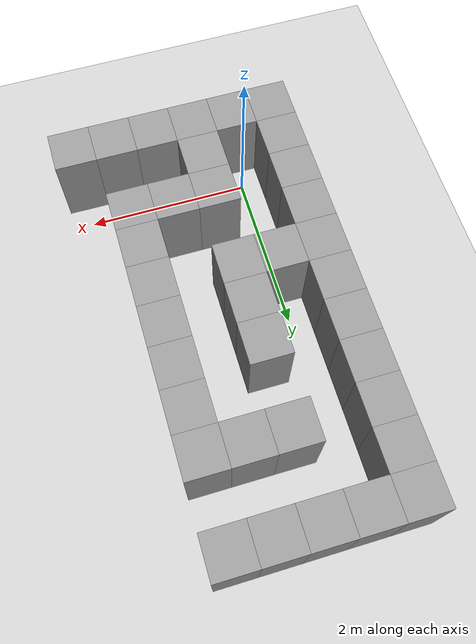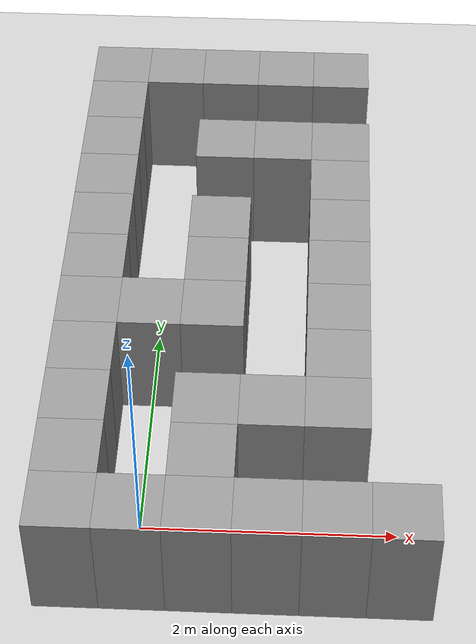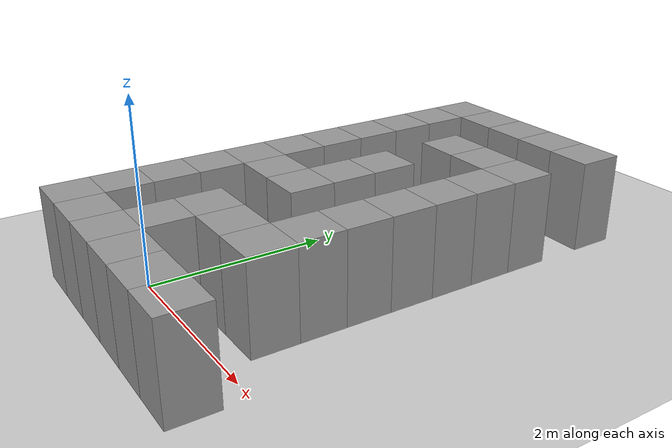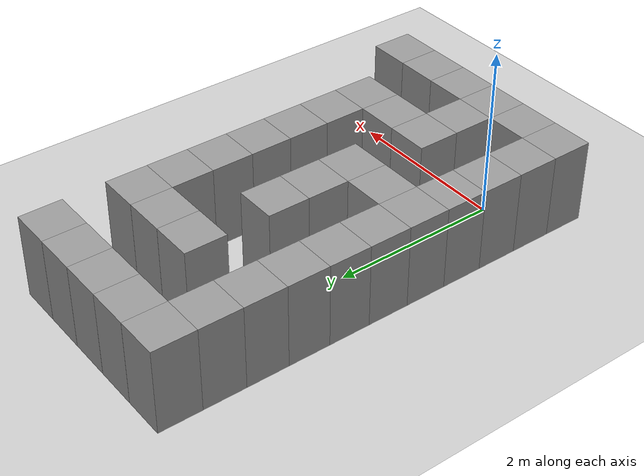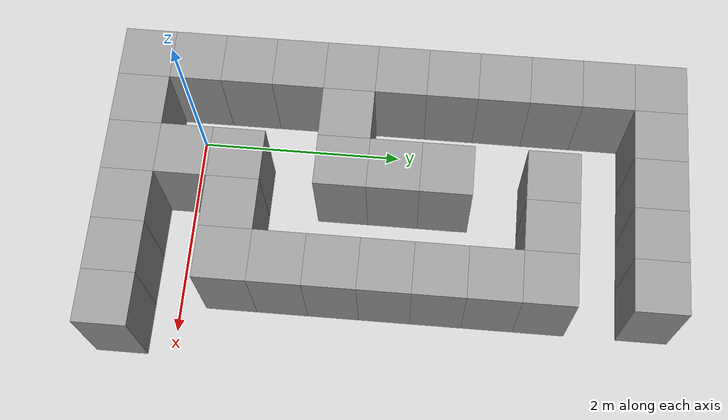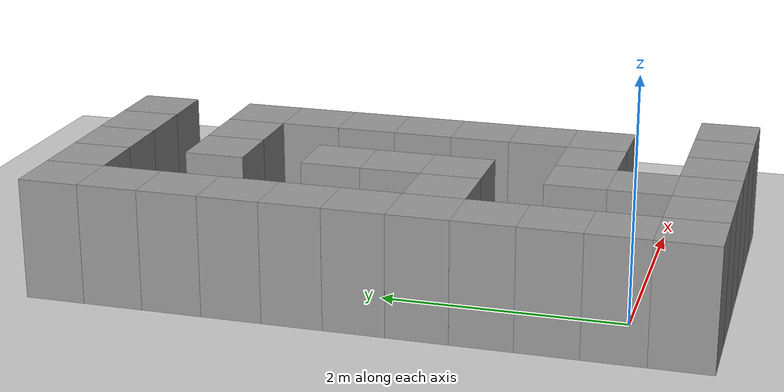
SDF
<sdf version="1.7">
 <world name="default">
  <model name="ground_plane">
   <static>1</static>
   <link name="link">
    <collision name="collision">
     <geometry><plane><normal>0 0 1</normal><size>100 100</size></plane></geometry>
     <surface>
      <contact><collide_bitmask>65535</collide_bitmask></contact>
      <friction><ode><mu>100</mu><mu2>50</mu2></ode></friction>
     </surface>
    </collision>
    <visual name="visual">
     <cast_shadows>0</cast_shadows>
     <geometry><plane><normal>0 0 1</normal><size>100 100</size></plane></geometry>
     <material>
      <script><uri>file://media/materials/scripts/gazebo.material</uri><name>Gazebo/Grey</name></script>
     </material>
    </visual>
   </link>
  </model>
  <model name="unit_box_0">
   <pose>-0.5 -0.5 0.5 0 -1e-05 -0.000818</pose>
   <link name="link">
    <inertial>
     <mass>1</mass>
     <inertia>
      <ixx>0.166667</ixx>
      <ixy>0</ixy>
      <ixz>0</ixz>
      <iyy>0.166667</iyy>
      <iyz>0</iyz>
      <izz>0.166667</izz>
     </inertia>
    </inertial>
    <collision name="collision"><geometry><box><size>0.5 0.5 1</size></box></geometry></collision>
    <visual name="visual">
     <geometry><box><size>0.5 0.5 1</size></box></geometry>
     <material>
      <script><name>Gazebo/Grey</name><uri>file://media/materials/scripts/gazebo.material</uri></script>
     </material>
    </visual>
   </link>
  </model>
  <model name="unit_box_1">
   <pose>0.0 -0.5 0.5 0 -1e-05 -0.000818</pose>
   <link name="link">
    <inertial>
     <mass>1</mass>
     <inertia>
      <ixx>0.166667</ixx>
      <ixy>0</ixy>
      <ixz>0</ixz>
      <iyy>0.166667</iyy>
      <iyz>0</iyz>
      <izz>0.166667</izz>
     </inertia>
    </inertial>
    <collision name="collision"><geometry><box><size>0.5 0.5 1</size></box></geometry></collision>
    <visual name="visual">
     <geometry><box><size>0.5 0.5 1</size></box></geometry>
     <material>
      <script><name>Gazebo/Grey</name><uri>file://media/materials/scripts/gazebo.material</uri></script>
     </material>
    </visual>
   </link>
  </model>
  <model name="unit_box_2">
   <pose>0.5 -0.5 0.5 0 -1e-05 -0.000818</pose>
   <link name="link">
    <inertial>
     <mass>1</mass>
     <inertia>
      <ixx>0.166667</ixx>
      <ixy>0</ixy>
      <ixz>0</ixz>
      <iyy>0.166667</iyy>
      <iyz>0</iyz>
      <izz>0.166667</izz>
     </inertia>
    </inertial>
    <collision name="collision"><geometry><box><size>0.5 0.5 1</size></box></geometry></collision>
    <visual name="visual">
     <geometry><box><size>0.5 0.5 1</size></box></geometry>
     <material>
      <script><name>Gazebo/Grey</name><uri>file://media/materials/scripts/gazebo.material</uri></script>
     </material>
    </visual>
   </link>
  </model>
  <model name="unit_box_3">
   <pose>1.0 -0.5 0.5 0 -1e-05 -0.000818</pose>
   <link name="link">
    <inertial>
     <mass>1</mass>
     <inertia>
      <ixx>0.166667</ixx>
      <ixy>0</ixy>
      <ixz>0</ixz>
      <iyy>0.166667</iyy>
      <iyz>0</iyz>
      <izz>0.166667</izz>
     </inertia>
    </inertial>
    <collision name="collision"><geometry><box><size>0.5 0.5 1</size></box></geometry></collision>
    <visual name="visual">
     <geometry><box><size>0.5 0.5 1</size></box></geometry>
     <material>
      <script><name>Gazebo/Grey</name><uri>file://media/materials/scripts/gazebo.material</uri></script>
     </material>
    </visual>
   </link>
  </model>
  <model name="unit_box_4">
   <pose>1.5 -0.5 0.5 0 -1e-05 -0.000818</pose>
   <link name="link">
    <inertial>
     <mass>1</mass>
     <inertia>
      <ixx>0.166667</ixx>
      <ixy>0</ixy>
      <ixz>0</ixz>
      <iyy>0.166667</iyy>
      <iyz>0</iyz>
      <izz>0.166667</izz>
     </inertia>
    </inertial>
    <collision name="collision"><geometry><box><size>0.5 0.5 1</size></box></geometry></collision>
    <visual name="visual">
     <geometry><box><size>0.5 0.5 1</size></box></geometry>
     <material>
      <script><name>Gazebo/Grey</name><uri>file://media/materials/scripts/gazebo.material</uri></script>
     </material>
    </visual>
   </link>
  </model>
  <model name="unit_box_5">
   <pose>2.0 -0.5 0.5 0 -1e-05 -0.000818</pose>
   <link name="link">
    <inertial>
     <mass>1</mass>
     <inertia>
      <ixx>0.166667</ixx>
      <ixy>0</ixy>
      <ixz>0</ixz>
      <iyy>0.166667</iyy>
      <iyz>0</iyz>
      <izz>0.166667</izz>
     </inertia>
    </inertial>
    <collision name="collision"><geometry><box><size>0.5 0.5 1</size></box></geometry></collision>
    <visual name="visual">
     <geometry><box><size>0.5 0.5 1</size></box></geometry>
     <material>
      <script><name>Gazebo/Grey</name><uri>file://media/materials/scripts/gazebo.material</uri></script>
     </material>
    </visual>
   </link>
  </model>
  <model name="unit_box_11">
   <pose>-0.5 0.0 0.5 0 -1e-05 -0.000818</pose>
   <link name="link">
    <inertial>
     <mass>1</mass>
     <inertia>
      <ixx>0.166667</ixx>
      <ixy>0</ixy>
      <ixz>0</ixz>
      <iyy>0.166667</iyy>
      <iyz>0</iyz>
      <izz>0.166667</izz>
     </inertia>
    </inertial>
    <collision name="collision"><geometry><box><size>0.5 0.5 1</size></box></geometry></collision>
    <visual name="visual">
     <geometry><box><size>0.5 0.5 1</size></box></geometry>
     <material>
      <script><name>Gazebo/Grey</name><uri>file://media/materials/scripts/gazebo.material</uri></script>
     </material>
    </visual>
   </link>
  </model>
  <model name="unit_box_12">
   <pose>0.5 0.0 0.5 0 -1e-05 -0.000818</pose>
   <link name="link">
    <inertial>
     <mass>1</mass>
     <inertia>
      <ixx>0.166667</ixx>
      <ixy>0</ixy>
      <ixz>0</ixz>
      <iyy>0.166667</iyy>
      <iyz>0</iyz>
      <izz>0.166667</izz>
     </inertia>
    </inertial>
    <collision name="collision"><geometry><box><size>0.5 0.5 1</size></box></geometry></collision>
    <visual name="visual">
     <geometry><box><size>0.5 0.5 1</size></box></geometry>
     <material>
      <script><name>Gazebo/Grey</name><uri>file://media/materials/scripts/gazebo.material</uri></script>
     </material>
    </visual>
   </link>
  </model>
  <model name="unit_box_14">
   <pose>-0.5 0.5 0.5 0 -1e-05 -0.000818</pose>
   <link name="link">
    <inertial>
     <mass>1</mass>
     <inertia>
      <ixx>0.166667</ixx>
      <ixy>0</ixy>
      <ixz>0</ixz>
      <iyy>0.166667</iyy>
      <iyz>0</iyz>
      <izz>0.166667</izz>
     </inertia>
    </inertial>
    <collision name="collision"><geometry><box><size>0.5 0.5 1</size></box></geometry></collision>
    <visual name="visual">
     <geometry><box><size>0.5 0.5 1</size></box></geometry>
     <material>
      <script><name>Gazebo/Grey</name><uri>file://media/materials/scripts/gazebo.material</uri></script>
     </material>
    </visual>
   </link>
  </model>
  <model name="unit_box_15">
   <pose>0.5 0.5 0.5 0 -1e-05 -0.000818</pose>
   <link name="link">
    <inertial>
     <mass>1</mass>
     <inertia>
      <ixx>0.166667</ixx>
      <ixy>0</ixy>
      <ixz>0</ixz>
      <iyy>0.166667</iyy>
      <iyz>0</iyz>
      <izz>0.166667</izz>
     </inertia>
    </inertial>
    <collision name="collision"><geometry><box><size>0.5 0.5 1</size></box></geometry></collision>
    <visual name="visual">
     <geometry><box><size>0.5 0.5 1</size></box></geometry>
     <material>
      <script><name>Gazebo/Grey</name><uri>file://media/materials/scripts/gazebo.material</uri></script>
     </material>
    </visual>
   </link>
  </model>
  <model name="unit_box_16">
   <pose>1.0 0.5 0.5 0 -1e-05 -0.000818</pose>
   <link name="link">
    <inertial>
     <mass>1</mass>
     <inertia>
      <ixx>0.166667</ixx>
      <ixy>0</ixy>
      <ixz>0</ixz>
      <iyy>0.166667</iyy>
      <iyz>0</iyz>
      <izz>0.166667</izz>
     </inertia>
    </inertial>
    <collision name="collision"><geometry><box><size>0.5 0.5 1</size></box></geometry></collision>
    <visual name="visual">
     <geometry><box><size>0.5 0.5 1</size></box></geometry>
     <material>
      <script><name>Gazebo/Grey</name><uri>file://media/materials/scripts/gazebo.material</uri></script>
     </material>
    </visual>
   </link>
  </model>
  <model name="unit_box_17">
   <pose>1.5 0.5 0.5 0 -1e-05 -0.000818</pose>
   <link name="link">
    <inertial>
     <mass>1</mass>
     <inertia>
      <ixx>0.166667</ixx>
      <ixy>0</ixy>
      <ixz>0</ixz>
      <iyy>0.166667</iyy>
      <iyz>0</iyz>
      <izz>0.166667</izz>
     </inertia>
    </inertial>
    <collision name="collision"><geometry><box><size>0.5 0.5 1</size></box></geometry></collision>
    <visual name="visual">
     <geometry><box><size>0.5 0.5 1</size></box></geometry>
     <material>
      <script><name>Gazebo/Grey</name><uri>file://media/materials/scripts/gazebo.material</uri></script>
     </material>
    </visual>
   </link>
  </model>
  <model name="unit_box_22">
   <pose>-0.5 1.0 0.5 0 -1e-05 -0.000818</pose>
   <link name="link">
    <inertial>
     <mass>1</mass>
     <inertia>
      <ixx>0.166667</ixx>
      <ixy>0</ixy>
      <ixz>0</ixz>
      <iyy>0.166667</iyy>
      <iyz>0</iyz>
      <izz>0.166667</izz>
     </inertia>
    </inertial>
    <collision name="collision"><geometry><box><size>0.5 0.5 1</size></box></geometry></collision>
    <visual name="visual">
     <geometry><box><size>0.5 0.5 1</size></box></geometry>
     <material>
      <script><name>Gazebo/Grey</name><uri>file://media/materials/scripts/gazebo.material</uri></script>
     </material>
    </visual>
   </link>
  </model>
  <model name="unit_box_23">
   <pose>1.5 1.0 0.5 0 -1e-05 -0.000818</pose>
   <link name="link">
    <inertial>
     <mass>1</mass>
     <inertia>
      <ixx>0.166667</ixx>
      <ixy>0</ixy>
      <ixz>0</ixz>
      <iyy>0.166667</iyy>
      <iyz>0</iyz>
      <izz>0.166667</izz>
     </inertia>
    </inertial>
    <collision name="collision"><geometry><box><size>0.5 0.5 1</size></box></geometry></collision>
    <visual name="visual">
     <geometry><box><size>0.5 0.5 1</size></box></geometry>
     <material>
      <script><name>Gazebo/Grey</name><uri>file://media/materials/scripts/gazebo.material</uri></script>
     </material>
    </visual>
   </link>
  </model>
  <model name="unit_box_27">
   <pose>-0.5 1.5 0.5 0 -1e-05 -0.000818</pose>
   <link name="link">
    <inertial>
     <mass>1</mass>
     <inertia>
      <ixx>0.166667</ixx>
      <ixy>0</ixy>
      <ixz>0</ixz>
      <iyy>0.166667</iyy>
      <iyz>0</iyz>
      <izz>0.166667</izz>
     </inertia>
    </inertial>
    <collision name="collision"><geometry><box><size>0.5 0.5 1</size></box></geometry></collision>
    <visual name="visual">
     <geometry><box><size>0.5 0.5 1</size></box></geometry>
     <material>
      <script><name>Gazebo/Grey</name><uri>file://media/materials/scripts/gazebo.material</uri></script>
     </material>
    </visual>
   </link>
  </model>
  <model name="unit_box_28">
   <pose>0.0 1.5 0.5 0 -1e-05 -0.000818</pose>
   <link name="link">
    <inertial>
     <mass>1</mass>
     <inertia>
      <ixx>0.166667</ixx>
      <ixy>0</ixy>
      <ixz>0</ixz>
      <iyy>0.166667</iyy>
      <iyz>0</iyz>
      <izz>0.166667</izz>
     </inertia>
    </inertial>
    <collision name="collision"><geometry><box><size>0.5 0.5 1</size></box></geometry></collision>
    <visual name="visual">
     <geometry><box><size>0.5 0.5 1</size></box></geometry>
     <material>
      <script><name>Gazebo/Grey</name><uri>file://media/materials/scripts/gazebo.material</uri></script>
     </material>
    </visual>
   </link>
  </model>
  <model name="unit_box_29">
   <pose>0.5 1.5 0.5 0 -1e-05 -0.000818</pose>
   <link name="link">
    <inertial>
     <mass>1</mass>
     <inertia>
      <ixx>0.166667</ixx>
      <ixy>0</ixy>
      <ixz>0</ixz>
      <iyy>0.166667</iyy>
      <iyz>0</iyz>
      <izz>0.166667</izz>
     </inertia>
    </inertial>
    <collision name="collision"><geometry><box><size>0.5 0.5 1</size></box></geometry></collision>
    <visual name="visual">
     <geometry><box><size>0.5 0.5 1</size></box></geometry>
     <material>
      <script><name>Gazebo/Grey</name><uri>file://media/materials/scripts/gazebo.material</uri></script>
     </material>
    </visual>
   </link>
  </model>
  <model name="unit_box_30">
   <pose>1.5 1.5 0.5 0 -1e-05 -0.000818</pose>
   <link name="link">
    <inertial>
     <mass>1</mass>
     <inertia>
      <ixx>0.166667</ixx>
      <ixy>0</ixy>
      <ixz>0</ixz>
      <iyy>0.166667</iyy>
      <iyz>0</iyz>
      <izz>0.166667</izz>
     </inertia>
    </inertial>
    <collision name="collision"><geometry><box><size>0.5 0.5 1</size></box></geometry></collision>
    <visual name="visual">
     <geometry><box><size>0.5 0.5 1</size></box></geometry>
     <material>
      <script><name>Gazebo/Grey</name><uri>file://media/materials/scripts/gazebo.material</uri></script>
     </material>
    </visual>
   </link>
  </model>
  <model name="unit_box_34">
   <pose>-0.5 2.0 0.5 0 -1e-05 -0.000818</pose>
   <link name="link">
    <inertial>
     <mass>1</mass>
     <inertia>
      <ixx>0.166667</ixx>
      <ixy>0</ixy>
      <ixz>0</ixz>
      <iyy>0.166667</iyy>
      <iyz>0</iyz>
      <izz>0.166667</izz>
     </inertia>
    </inertial>
    <collision name="collision"><geometry><box><size>0.5 0.5 1</size></box></geometry></collision>
    <visual name="visual">
     <geometry><box><size>0.5 0.5 1</size></box></geometry>
     <material>
      <script><name>Gazebo/Grey</name><uri>file://media/materials/scripts/gazebo.material</uri></script>
     </material>
    </visual>
   </link>
  </model>
  <model name="unit_box_35">
   <pose>0.5 2.0 0.5 0 -1e-05 -0.000818</pose>
   <link name="link">
    <inertial>
     <mass>1</mass>
     <inertia>
      <ixx>0.166667</ixx>
      <ixy>0</ixy>
      <ixz>0</ixz>
      <iyy>0.166667</iyy>
      <iyz>0</iyz>
      <izz>0.166667</izz>
     </inertia>
    </inertial>
    <collision name="collision"><geometry><box><size>0.5 0.5 1</size></box></geometry></collision>
    <visual name="visual">
     <geometry><box><size>0.5 0.5 1</size></box></geometry>
     <material>
      <script><name>Gazebo/Grey</name><uri>file://media/materials/scripts/gazebo.material</uri></script>
     </material>
    </visual>
   </link>
  </model>
  <model name="unit_box_36">
   <pose>1.5 2.0 0.5 0 -1e-05 -0.000818</pose>
   <link name="link">
    <inertial>
     <mass>1</mass>
     <inertia>
      <ixx>0.166667</ixx>
      <ixy>0</ixy>
      <ixz>0</ixz>
      <iyy>0.166667</iyy>
      <iyz>0</iyz>
      <izz>0.166667</izz>
     </inertia>
    </inertial>
    <collision name="collision"><geometry><box><size>0.5 0.5 1</size></box></geometry></collision>
    <visual name="visual">
     <geometry><box><size>0.5 0.5 1</size></box></geometry>
     <material>
      <script><name>Gazebo/Grey</name><uri>file://media/materials/scripts/gazebo.material</uri></script>
     </material>
    </visual>
   </link>
  </model>
  <model name="unit_box_39">
   <pose>-0.5 2.5 0.5 0 -1e-05 -0.000818</pose>
   <link name="link">
    <inertial>
     <mass>1</mass>
     <inertia>
      <ixx>0.166667</ixx>
      <ixy>0</ixy>
      <ixz>0</ixz>
      <iyy>0.166667</iyy>
      <iyz>0</iyz>
      <izz>0.166667</izz>
     </inertia>
    </inertial>
    <collision name="collision"><geometry><box><size>0.5 0.5 1</size></box></geometry></collision>
    <visual name="visual">
     <geometry><box><size>0.5 0.5 1</size></box></geometry>
     <material>
      <script><name>Gazebo/Grey</name><uri>file://media/materials/scripts/gazebo.material</uri></script>
     </material>
    </visual>
   </link>
  </model>
  <model name="unit_box_40">
   <pose>0.5 2.5 0.5 0 -1e-05 -0.000818</pose>
   <link name="link">
    <inertial>
     <mass>1</mass>
     <inertia>
      <ixx>0.166667</ixx>
      <ixy>0</ixy>
      <ixz>0</ixz>
      <iyy>0.166667</iyy>
      <iyz>0</iyz>
      <izz>0.166667</izz>
     </inertia>
    </inertial>
    <collision name="collision"><geometry><box><size>0.5 0.5 1</size></box></geometry></collision>
    <visual name="visual">
     <geometry><box><size>0.5 0.5 1</size></box></geometry>
     <material>
      <script><name>Gazebo/Grey</name><uri>file://media/materials/scripts/gazebo.material</uri></script>
     </material>
    </visual>
   </link>
  </model>
  <model name="unit_box_41">
   <pose>1.5 2.5 0.5 0 -1e-05 -0.000818</pose>
   <link name="link">
    <inertial>
     <mass>1</mass>
     <inertia>
      <ixx>0.166667</ixx>
      <ixy>0</ixy>
      <ixz>0</ixz>
      <iyy>0.166667</iyy>
      <iyz>0</iyz>
      <izz>0.166667</izz>
     </inertia>
    </inertial>
    <collision name="collision"><geometry><box><size>0.5 0.5 1</size></box></geometry></collision>
    <visual name="visual">
     <geometry><box><size>0.5 0.5 1</size></box></geometry>
     <material>
      <script><name>Gazebo/Grey</name><uri>file://media/materials/scripts/gazebo.material</uri></script>
     </material>
    </visual>
   </link>
  </model>
  <model name="unit_box_47">
   <pose>-0.5 3.0 0.5 0 -1e-05 -0.000818</pose>
   <link name="link">
    <inertial>
     <mass>1</mass>
     <inertia>
      <ixx>0.166667</ixx>
      <ixy>0</ixy>
      <ixz>0</ixz>
      <iyy>0.166667</iyy>
      <iyz>0</iyz>
      <izz>0.166667</izz>
     </inertia>
    </inertial>
    <collision name="collision"><geometry><box><size>0.5 0.5 1</size></box></geometry></collision>
    <visual name="visual">
     <geometry><box><size>0.5 0.5 1</size></box></geometry>
     <material>
      <script><name>Gazebo/Grey</name><uri>file://media/materials/scripts/gazebo.material</uri></script>
     </material>
    </visual>
   </link>
  </model>
  <model name="unit_box_48">
   <pose>1.5 3.0 0.5 0 -1e-05 -0.000818</pose>
   <link name="link">
    <inertial>
     <mass>1</mass>
     <inertia>
      <ixx>0.166667</ixx>
      <ixy>0</ixy>
      <ixz>0</ixz>
      <iyy>0.166667</iyy>
      <iyz>0</iyz>
      <izz>0.166667</izz>
     </inertia>
    </inertial>
    <collision name="collision"><geometry><box><size>0.5 0.5 1</size></box></geometry></collision>
    <visual name="visual">
     <geometry><box><size>0.5 0.5 1</size></box></geometry>
     <material>
      <script><name>Gazebo/Grey</name><uri>file://media/materials/scripts/gazebo.material</uri></script>
     </material>
    </visual>
   </link>
  </model>
  <model name="unit_box_51">
   <pose>-0.5 3.5 0.5 0 -1e-05 -0.000818</pose>
   <link name="link">
    <inertial>
     <mass>1</mass>
     <inertia>
      <ixx>0.166667</ixx>
      <ixy>0</ixy>
      <ixz>0</ixz>
      <iyy>0.166667</iyy>
      <iyz>0</iyz>
      <izz>0.166667</izz>
     </inertia>
    </inertial>
    <collision name="collision"><geometry><box><size>0.5 0.5 1</size></box></geometry></collision>
    <visual name="visual">
     <geometry><box><size>0.5 0.5 1</size></box></geometry>
     <material>
      <script><name>Gazebo/Grey</name><uri>file://media/materials/scripts/gazebo.material</uri></script>
     </material>
    </visual>
   </link>
  </model>
  <model name="unit_box_52">
   <pose>0.5 3.5 0.5 0 -1e-05 -0.000818</pose>
   <link name="link">
    <inertial>
     <mass>1</mass>
     <inertia>
      <ixx>0.166667</ixx>
      <ixy>0</ixy>
      <ixz>0</ixz>
      <iyy>0.166667</iyy>
      <iyz>0</iyz>
      <izz>0.166667</izz>
     </inertia>
    </inertial>
    <collision name="collision"><geometry><box><size>0.5 0.5 1</size></box></geometry></collision>
    <visual name="visual">
     <geometry><box><size>0.5 0.5 1</size></box></geometry>
     <material>
      <script><name>Gazebo/Grey</name><uri>file://media/materials/scripts/gazebo.material</uri></script>
     </material>
    </visual>
   </link>
  </model>
  <model name="unit_box_53">
   <pose>1.0 3.5 0.5 0 -1e-05 -0.000818</pose>
   <link name="link">
    <inertial>
     <mass>1</mass>
     <inertia>
      <ixx>0.166667</ixx>
      <ixy>0</ixy>
      <ixz>0</ixz>
      <iyy>0.166667</iyy>
      <iyz>0</iyz>
      <izz>0.166667</izz>
     </inertia>
    </inertial>
    <collision name="collision"><geometry><box><size>0.5 0.5 1</size></box></geometry></collision>
    <visual name="visual">
     <geometry><box><size>0.5 0.5 1</size></box></geometry>
     <material>
      <script><name>Gazebo/Grey</name><uri>file://media/materials/scripts/gazebo.material</uri></script>
     </material>
    </visual>
   </link>
  </model>
  <model name="unit_box_54">
   <pose>1.5 3.5 0.5 0 -1e-05 -0.000818</pose>
   <link name="link">
    <inertial>
     <mass>1</mass>
     <inertia>
      <ixx>0.166667</ixx>
      <ixy>0</ixy>
      <ixz>0</ixz>
      <iyy>0.166667</iyy>
      <iyz>0</iyz>
      <izz>0.166667</izz>
     </inertia>
    </inertial>
    <collision name="collision"><geometry><box><size>0.5 0.5 1</size></box></geometry></collision>
    <visual name="visual">
     <geometry><box><size>0.5 0.5 1</size></box></geometry>
     <material>
      <script><name>Gazebo/Grey</name><uri>file://media/materials/scripts/gazebo.material</uri></script>
     </material>
    </visual>
   </link>
  </model>
  <model name="unit_box_58">
   <pose>-0.5 4.0 0.5 0 -1e-05 -0.000818</pose>
   <link name="link">
    <inertial>
     <mass>1</mass>
     <inertia>
      <ixx>0.166667</ixx>
      <ixy>0</ixy>
      <ixz>0</ixz>
      <iyy>0.166667</iyy>
      <iyz>0</iyz>
      <izz>0.166667</izz>
     </inertia>
    </inertial>
    <collision name="collision"><geometry><box><size>0.5 0.5 1</size></box></geometry></collision>
    <visual name="visual">
     <geometry><box><size>0.5 0.5 1</size></box></geometry>
     <material>
      <script><name>Gazebo/Grey</name><uri>file://media/materials/scripts/gazebo.material</uri></script>
     </material>
    </visual>
   </link>
  </model>
  <model name="unit_box_61">
   <pose>-0.5 4.5 0.5 0 -1e-05 -0.000818</pose>
   <link name="link">
    <inertial>
     <mass>1</mass>
     <inertia>
      <ixx>0.166667</ixx>
      <ixy>0</ixy>
      <ixz>0</ixz>
      <iyy>0.166667</iyy>
      <iyz>0</iyz>
      <izz>0.166667</izz>
     </inertia>
    </inertial>
    <collision name="collision"><geometry><box><size>0.5 0.5 1</size></box></geometry></collision>
    <visual name="visual">
     <geometry><box><size>0.5 0.5 1</size></box></geometry>
     <material>
      <script><name>Gazebo/Grey</name><uri>file://media/materials/scripts/gazebo.material</uri></script>
     </material>
    </visual>
   </link>
  </model>
  <model name="unit_box_62">
   <pose>0.0 4.5 0.5 0 -1e-05 -0.000818</pose>
   <link name="link">
    <inertial>
     <mass>1</mass>
     <inertia>
      <ixx>0.166667</ixx>
      <ixy>0</ixy>
      <ixz>0</ixz>
      <iyy>0.166667</iyy>
      <iyz>0</iyz>
      <izz>0.166667</izz>
     </inertia>
    </inertial>
    <collision name="collision"><geometry><box><size>0.5 0.5 1</size></box></geometry></collision>
    <visual name="visual">
     <geometry><box><size>0.5 0.5 1</size></box></geometry>
     <material>
      <script><name>Gazebo/Grey</name><uri>file://media/materials/scripts/gazebo.material</uri></script>
     </material>
    </visual>
   </link>
  </model>
  <model name="unit_box_63">
   <pose>0.5 4.5 0.5 0 -1e-05 -0.000818</pose>
   <link name="link">
    <inertial>
     <mass>1</mass>
     <inertia>
      <ixx>0.166667</ixx>
      <ixy>0</ixy>
      <ixz>0</ixz>
      <iyy>0.166667</iyy>
      <iyz>0</iyz>
      <izz>0.166667</izz>
     </inertia>
    </inertial>
    <collision name="collision"><geometry><box><size>0.5 0.5 1</size></box></geometry></collision>
    <visual name="visual">
     <geometry><box><size>0.5 0.5 1</size></box></geometry>
     <material>
      <script><name>Gazebo/Grey</name><uri>file://media/materials/scripts/gazebo.material</uri></script>
     </material>
    </visual>
   </link>
  </model>
  <model name="unit_box_64">
   <pose>1.0 4.5 0.5 0 -1e-05 -0.000818</pose>
   <link name="link">
    <inertial>
     <mass>1</mass>
     <inertia>
      <ixx>0.166667</ixx>
      <ixy>0</ixy>
      <ixz>0</ixz>
      <iyy>0.166667</iyy>
      <iyz>0</iyz>
      <izz>0.166667</izz>
     </inertia>
    </inertial>
    <collision name="collision"><geometry><box><size>0.5 0.5 1</size></box></geometry></collision>
    <visual name="visual">
     <geometry><box><size>0.5 0.5 1</size></box></geometry>
     <material>
      <script><name>Gazebo/Grey</name><uri>file://media/materials/scripts/gazebo.material</uri></script>
     </material>
    </visual>
   </link>
  </model>
  <model name="unit_box_65">
   <pose>1.5 4.5 0.5 0 -1e-05 -0.000818</pose>
   <link name="link">
    <inertial>
     <mass>1</mass>
     <inertia>
      <ixx>0.166667</ixx>
      <ixy>0</ixy>
      <ixz>0</ixz>
      <iyy>0.166667</iyy>
      <iyz>0</iyz>
      <izz>0.166667</izz>
     </inertia>
    </inertial>
    <collision name="collision"><geometry><box><size>0.5 0.5 1</size></box></geometry></collision>
    <visual name="visual">
     <geometry><box><size>0.5 0.5 1</size></box></geometry>
     <material>
      <script><name>Gazebo/Grey</name><uri>file://media/materials/scripts/gazebo.material</uri></script>
     </material>
    </visual>
   </link>
  </model>
 </world>
</sdf>
